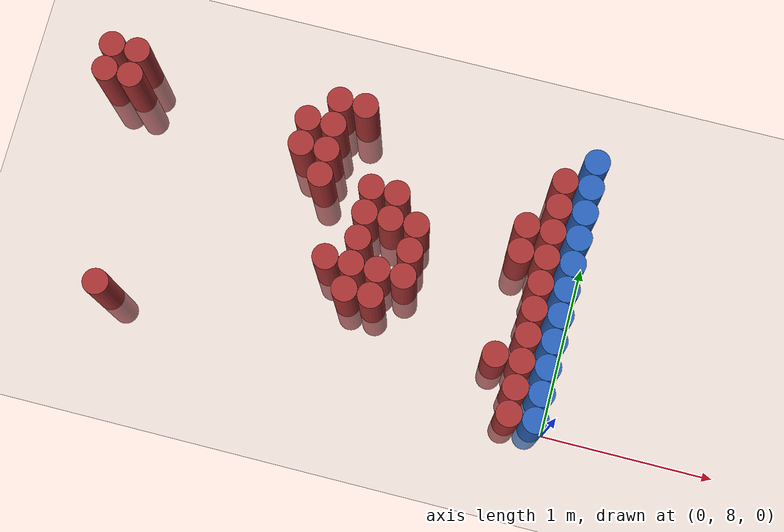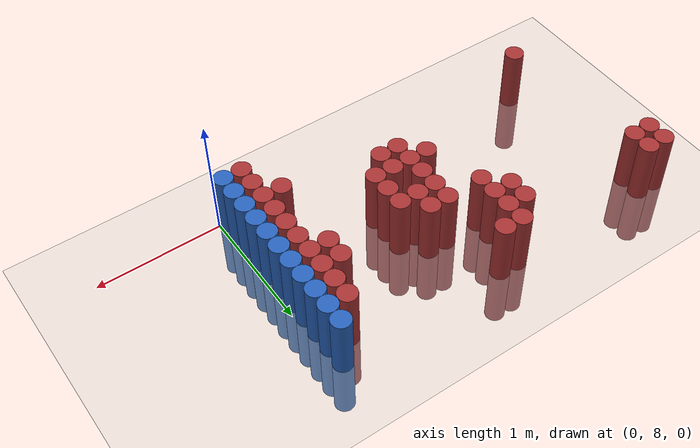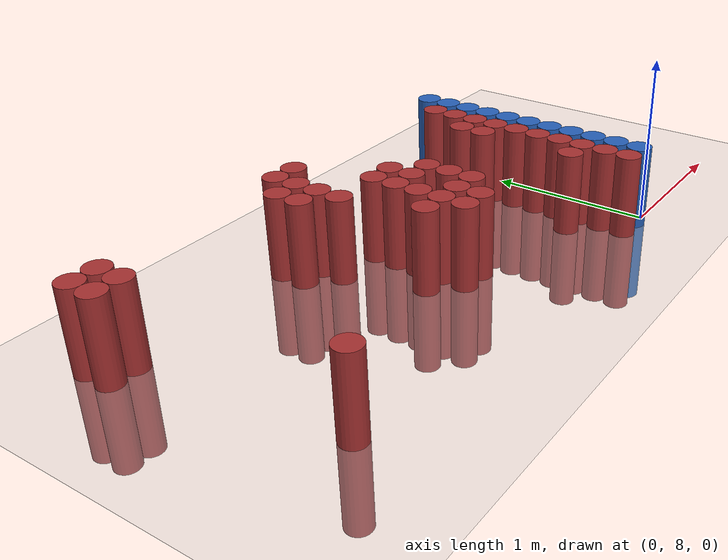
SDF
<sdf version="1.6">
 <world name="default">
  <model name="ground_plane">
   <static>1</static>
   <link name="link">
    <collision name="collision">
     <geometry><plane><normal>0 0 1</normal><size>100 100</size></plane></geometry>
     <surface><friction><ode><mu>100</mu><mu2>50</mu2></ode></friction></surface>
    </collision>
    <visual name="visual">
     <cast_shadows>0</cast_shadows>
     <geometry><plane><normal>0 0 1</normal><size>100 100</size></plane></geometry>
     <material>
      <script><uri>file://media/materials/scripts/gazebo.material</uri><name>Gazebo/Grey</name></script>
     </material>
    </visual>
   </link>
  </model>
  <model name="unit_cylinder_215">
   <static>1</static>
   <pose>-2.925000 9.375000 0.000000 0.000000 0.000000 0.000000</pose>
   <link name="link">
    <inertial>
     <mass>1</mass>
     <inertia><ixx>0.145833</ixx><ixy>0</ixy><ixz>0</ixz><iyy>0.145833</iyy><iyz>0</iyz><izz>0.125</izz></inertia>
    </inertial>
    <collision name="collision">
     <geometry><cylinder><radius>0.075000</radius><length>1</length></cylinder></geometry>
    </collision>
    <visual name="visual">
     <geometry><cylinder><radius>0.075000</radius><length>1</length></cylinder></geometry>
     <material>
      <ambient>0.648000 0.192000 0.192000 1</ambient>
      <diffuse>0.648000 0.192000 0.192000 1</diffuse>
     </material>
     <material>
      <script><name>Gazebo/Grey</name><uri>file://media/materials/scripts/gazebo.material</uri></script>
     </material>
    </visual>
   </link>
  </model>
  <model name="unit_cylinder_216">
   <static>1</static>
   <pose>-2.925000 9.525000 0.000000 0.000000 0.000000 0.000000</pose>
   <link name="link">
    <inertial>
     <mass>1</mass>
     <inertia><ixx>0.145833</ixx><ixy>0</ixy><ixz>0</ixz><iyy>0.145833</iyy><iyz>0</iyz><izz>0.125</izz></inertia>
    </inertial>
    <collision name="collision">
     <geometry><cylinder><radius>0.075000</radius><length>1</length></cylinder></geometry>
    </collision>
    <visual name="visual">
     <geometry><cylinder><radius>0.075000</radius><length>1</length></cylinder></geometry>
     <material>
      <ambient>0.648000 0.192000 0.192000 1</ambient>
      <diffuse>0.648000 0.192000 0.192000 1</diffuse>
     </material>
     <material>
      <script><name>Gazebo/Grey</name><uri>file://media/materials/scripts/gazebo.material</uri></script>
     </material>
    </visual>
   </link>
  </model>
  <model name="unit_cylinder_219">
   <static>1</static>
   <pose>-2.775000 9.375000 0.000000 0.000000 0.000000 0.000000</pose>
   <link name="link">
    <inertial>
     <mass>1</mass>
     <inertia><ixx>0.145833</ixx><ixy>0</ixy><ixz>0</ixz><iyy>0.145833</iyy><iyz>0</iyz><izz>0.125</izz></inertia>
    </inertial>
    <collision name="collision">
     <geometry><cylinder><radius>0.075000</radius><length>1</length></cylinder></geometry>
    </collision>
    <visual name="visual">
     <geometry><cylinder><radius>0.075000</radius><length>1</length></cylinder></geometry>
     <material>
      <ambient>0.648000 0.192000 0.192000 1</ambient>
      <diffuse>0.648000 0.192000 0.192000 1</diffuse>
     </material>
     <material>
      <script><name>Gazebo/Grey</name><uri>file://media/materials/scripts/gazebo.material</uri></script>
     </material>
    </visual>
   </link>
  </model>
  <model name="unit_cylinder_220">
   <static>1</static>
   <pose>-2.775000 9.525000 0.000000 0.000000 0.000000 0.000000</pose>
   <link name="link">
    <inertial>
     <mass>1</mass>
     <inertia><ixx>0.145833</ixx><ixy>0</ixy><ixz>0</ixz><iyy>0.145833</iyy><iyz>0</iyz><izz>0.125</izz></inertia>
    </inertial>
    <collision name="collision">
     <geometry><cylinder><radius>0.075000</radius><length>1</length></cylinder></geometry>
    </collision>
    <visual name="visual">
     <geometry><cylinder><radius>0.075000</radius><length>1</length></cylinder></geometry>
     <material>
      <ambient>0.648000 0.192000 0.192000 1</ambient>
      <diffuse>0.648000 0.192000 0.192000 1</diffuse>
     </material>
     <material>
      <script><name>Gazebo/Grey</name><uri>file://media/materials/scripts/gazebo.material</uri></script>
     </material>
    </visual>
   </link>
  </model>
  <model name="unit_cylinder_222">
   <static>1</static>
   <pose>-2.625000 8.175000 0.000000 0.000000 0.000000 0.000000</pose>
   <link name="link">
    <inertial>
     <mass>1</mass>
     <inertia><ixx>0.145833</ixx><ixy>0</ixy><ixz>0</ixz><iyy>0.145833</iyy><iyz>0</iyz><izz>0.125</izz></inertia>
    </inertial>
    <collision name="collision">
     <geometry><cylinder><radius>0.075000</radius><length>1</length></cylinder></geometry>
    </collision>
    <visual name="visual">
     <geometry><cylinder><radius>0.075000</radius><length>1</length></cylinder></geometry>
     <material>
      <ambient>0.648000 0.192000 0.192000 1</ambient>
      <diffuse>0.648000 0.192000 0.192000 1</diffuse>
     </material>
     <material>
      <script><name>Gazebo/Grey</name><uri>file://media/materials/scripts/gazebo.material</uri></script>
     </material>
    </visual>
   </link>
  </model>
  <model name="unit_cylinder_223">
   <static>1</static>
   <pose>-1.725000 9.225000 0.000000 0.000000 0.000000 0.000000</pose>
   <link name="link">
    <inertial>
     <mass>1</mass>
     <inertia><ixx>0.145833</ixx><ixy>0</ixy><ixz>0</ixz><iyy>0.145833</iyy><iyz>0</iyz><izz>0.125</izz></inertia>
    </inertial>
    <collision name="collision">
     <geometry><cylinder><radius>0.075000</radius><length>1</length></cylinder></geometry>
    </collision>
    <visual name="visual">
     <geometry><cylinder><radius>0.075000</radius><length>1</length></cylinder></geometry>
     <material>
      <ambient>0.648000 0.192000 0.192000 1</ambient>
      <diffuse>0.648000 0.192000 0.192000 1</diffuse>
     </material>
     <material>
      <script><name>Gazebo/Grey</name><uri>file://media/materials/scripts/gazebo.material</uri></script>
     </material>
    </visual>
   </link>
  </model>
  <model name="unit_cylinder_224">
   <static>1</static>
   <pose>-1.725000 9.375000 0.000000 0.000000 0.000000 0.000000</pose>
   <link name="link">
    <inertial>
     <mass>1</mass>
     <inertia><ixx>0.145833</ixx><ixy>0</ixy><ixz>0</ixz><iyy>0.145833</iyy><iyz>0</iyz><izz>0.125</izz></inertia>
    </inertial>
    <collision name="collision">
     <geometry><cylinder><radius>0.075000</radius><length>1</length></cylinder></geometry>
    </collision>
    <visual name="visual">
     <geometry><cylinder><radius>0.075000</radius><length>1</length></cylinder></geometry>
     <material>
      <ambient>0.648000 0.192000 0.192000 1</ambient>
      <diffuse>0.648000 0.192000 0.192000 1</diffuse>
     </material>
     <material>
      <script><name>Gazebo/Grey</name><uri>file://media/materials/scripts/gazebo.material</uri></script>
     </material>
    </visual>
   </link>
  </model>
  <model name="unit_cylinder_225">
   <static>1</static>
   <pose>-1.575000 9.075000 0.000000 0.000000 0.000000 0.000000</pose>
   <link name="link">
    <inertial>
     <mass>1</mass>
     <inertia><ixx>0.145833</ixx><ixy>0</ixy><ixz>0</ixz><iyy>0.145833</iyy><iyz>0</iyz><izz>0.125</izz></inertia>
    </inertial>
    <collision name="collision">
     <geometry><cylinder><radius>0.075000</radius><length>1</length></cylinder></geometry>
    </collision>
    <visual name="visual">
     <geometry><cylinder><radius>0.075000</radius><length>1</length></cylinder></geometry>
     <material>
      <ambient>0.648000 0.192000 0.192000 1</ambient>
      <diffuse>0.648000 0.192000 0.192000 1</diffuse>
     </material>
     <material>
      <script><name>Gazebo/Grey</name><uri>file://media/materials/scripts/gazebo.material</uri></script>
     </material>
    </visual>
   </link>
  </model>
  <model name="unit_cylinder_226">
   <static>1</static>
   <pose>-1.575000 9.225000 0.000000 0.000000 0.000000 0.000000</pose>
   <link name="link">
    <inertial>
     <mass>1</mass>
     <inertia><ixx>0.145833</ixx><ixy>0</ixy><ixz>0</ixz><iyy>0.145833</iyy><iyz>0</iyz><izz>0.125</izz></inertia>
    </inertial>
    <collision name="collision">
     <geometry><cylinder><radius>0.075000</radius><length>1</length></cylinder></geometry>
    </collision>
    <visual name="visual">
     <geometry><cylinder><radius>0.075000</radius><length>1</length></cylinder></geometry>
     <material>
      <ambient>0.648000 0.192000 0.192000 1</ambient>
      <diffuse>0.648000 0.192000 0.192000 1</diffuse>
     </material>
     <material>
      <script><name>Gazebo/Grey</name><uri>file://media/materials/scripts/gazebo.material</uri></script>
     </material>
    </visual>
   </link>
  </model>
  <model name="unit_cylinder_227">
   <static>1</static>
   <pose>-1.575000 9.375000 0.000000 0.000000 0.000000 0.000000</pose>
   <link name="link">
    <inertial>
     <mass>1</mass>
     <inertia><ixx>0.145833</ixx><ixy>0</ixy><ixz>0</ixz><iyy>0.145833</iyy><iyz>0</iyz><izz>0.125</izz></inertia>
    </inertial>
    <collision name="collision">
     <geometry><cylinder><radius>0.075000</radius><length>1</length></cylinder></geometry>
    </collision>
    <visual name="visual">
     <geometry><cylinder><radius>0.075000</radius><length>1</length></cylinder></geometry>
     <material>
      <ambient>0.648000 0.192000 0.192000 1</ambient>
      <diffuse>0.648000 0.192000 0.192000 1</diffuse>
     </material>
     <material>
      <script><name>Gazebo/Grey</name><uri>file://media/materials/scripts/gazebo.material</uri></script>
     </material>
    </visual>
   </link>
  </model>
  <model name="unit_cylinder_228">
   <static>1</static>
   <pose>-1.575000 9.525000 0.000000 0.000000 0.000000 0.000000</pose>
   <link name="link">
    <inertial>
     <mass>1</mass>
     <inertia><ixx>0.145833</ixx><ixy>0</ixy><ixz>0</ixz><iyy>0.145833</iyy><iyz>0</iyz><izz>0.125</izz></inertia>
    </inertial>
    <collision name="collision">
     <geometry><cylinder><radius>0.075000</radius><length>1</length></cylinder></geometry>
    </collision>
    <visual name="visual">
     <geometry><cylinder><radius>0.075000</radius><length>1</length></cylinder></geometry>
     <material>
      <ambient>0.648000 0.192000 0.192000 1</ambient>
      <diffuse>0.648000 0.192000 0.192000 1</diffuse>
     </material>
     <material>
      <script><name>Gazebo/Grey</name><uri>file://media/materials/scripts/gazebo.material</uri></script>
     </material>
    </visual>
   </link>
  </model>
  <model name="unit_cylinder_233">
   <static>1</static>
   <pose>-1.425000 8.625000 0.000000 0.000000 0.000000 0.000000</pose>
   <link name="link">
    <inertial>
     <mass>1</mass>
     <inertia><ixx>0.145833</ixx><ixy>0</ixy><ixz>0</ixz><iyy>0.145833</iyy><iyz>0</iyz><izz>0.125</izz></inertia>
    </inertial>
    <collision name="collision">
     <geometry><cylinder><radius>0.075000</radius><length>1</length></cylinder></geometry>
    </collision>
    <visual name="visual">
     <geometry><cylinder><radius>0.075000</radius><length>1</length></cylinder></geometry>
     <material>
      <ambient>0.648000 0.192000 0.192000 1</ambient>
      <diffuse>0.648000 0.192000 0.192000 1</diffuse>
     </material>
     <material>
      <script><name>Gazebo/Grey</name><uri>file://media/materials/scripts/gazebo.material</uri></script>
     </material>
    </visual>
   </link>
  </model>
  <model name="unit_cylinder_234">
   <static>1</static>
   <pose>-1.425000 9.525000 0.000000 0.000000 0.000000 0.000000</pose>
   <link name="link">
    <inertial>
     <mass>1</mass>
     <inertia><ixx>0.145833</ixx><ixy>0</ixy><ixz>0</ixz><iyy>0.145833</iyy><iyz>0</iyz><izz>0.125</izz></inertia>
    </inertial>
    <collision name="collision">
     <geometry><cylinder><radius>0.075000</radius><length>1</length></cylinder></geometry>
    </collision>
    <visual name="visual">
     <geometry><cylinder><radius>0.075000</radius><length>1</length></cylinder></geometry>
     <material>
      <ambient>0.648000 0.192000 0.192000 1</ambient>
      <diffuse>0.648000 0.192000 0.192000 1</diffuse>
     </material>
     <material>
      <script><name>Gazebo/Grey</name><uri>file://media/materials/scripts/gazebo.material</uri></script>
     </material>
    </visual>
   </link>
  </model>
  <model name="unit_cylinder_240">
   <static>1</static>
   <pose>-1.275000 8.475000 0.000000 0.000000 0.000000 0.000000</pose>
   <link name="link">
    <inertial>
     <mass>1</mass>
     <inertia><ixx>0.145833</ixx><ixy>0</ixy><ixz>0</ixz><iyy>0.145833</iyy><iyz>0</iyz><izz>0.125</izz></inertia>
    </inertial>
    <collision name="collision">
     <geometry><cylinder><radius>0.075000</radius><length>1</length></cylinder></geometry>
    </collision>
    <visual name="visual">
     <geometry><cylinder><radius>0.075000</radius><length>1</length></cylinder></geometry>
     <material>
      <ambient>0.648000 0.192000 0.192000 1</ambient>
      <diffuse>0.648000 0.192000 0.192000 1</diffuse>
     </material>
     <material>
      <script><name>Gazebo/Grey</name><uri>file://media/materials/scripts/gazebo.material</uri></script>
     </material>
    </visual>
   </link>
  </model>
  <model name="unit_cylinder_241">
   <static>1</static>
   <pose>-1.275000 8.625000 0.000000 0.000000 0.000000 0.000000</pose>
   <link name="link">
    <inertial>
     <mass>1</mass>
     <inertia><ixx>0.145833</ixx><ixy>0</ixy><ixz>0</ixz><iyy>0.145833</iyy><iyz>0</iyz><izz>0.125</izz></inertia>
    </inertial>
    <collision name="collision">
     <geometry><cylinder><radius>0.075000</radius><length>1</length></cylinder></geometry>
    </collision>
    <visual name="visual">
     <geometry><cylinder><radius>0.075000</radius><length>1</length></cylinder></geometry>
     <material>
      <ambient>0.648000 0.192000 0.192000 1</ambient>
      <diffuse>0.648000 0.192000 0.192000 1</diffuse>
     </material>
     <material>
      <script><name>Gazebo/Grey</name><uri>file://media/materials/scripts/gazebo.material</uri></script>
     </material>
    </visual>
   </link>
  </model>
  <model name="unit_cylinder_242">
   <static>1</static>
   <pose>-1.275000 8.775000 0.000000 0.000000 0.000000 0.000000</pose>
   <link name="link">
    <inertial>
     <mass>1</mass>
     <inertia><ixx>0.145833</ixx><ixy>0</ixy><ixz>0</ixz><iyy>0.145833</iyy><iyz>0</iyz><izz>0.125</izz></inertia>
    </inertial>
    <collision name="collision">
     <geometry><cylinder><radius>0.075000</radius><length>1</length></cylinder></geometry>
    </collision>
    <visual name="visual">
     <geometry><cylinder><radius>0.075000</radius><length>1</length></cylinder></geometry>
     <material>
      <ambient>0.648000 0.192000 0.192000 1</ambient>
      <diffuse>0.648000 0.192000 0.192000 1</diffuse>
     </material>
     <material>
      <script><name>Gazebo/Grey</name><uri>file://media/materials/scripts/gazebo.material</uri></script>
     </material>
    </visual>
   </link>
  </model>
  <model name="unit_cylinder_243">
   <static>1</static>
   <pose>-1.275000 8.925000 0.000000 0.000000 0.000000 0.000000</pose>
   <link name="link">
    <inertial>
     <mass>1</mass>
     <inertia><ixx>0.145833</ixx><ixy>0</ixy><ixz>0</ixz><iyy>0.145833</iyy><iyz>0</iyz><izz>0.125</izz></inertia>
    </inertial>
    <collision name="collision">
     <geometry><cylinder><radius>0.075000</radius><length>1</length></cylinder></geometry>
    </collision>
    <visual name="visual">
     <geometry><cylinder><radius>0.075000</radius><length>1</length></cylinder></geometry>
     <material>
      <ambient>0.648000 0.192000 0.192000 1</ambient>
      <diffuse>0.648000 0.192000 0.192000 1</diffuse>
     </material>
     <material>
      <script><name>Gazebo/Grey</name><uri>file://media/materials/scripts/gazebo.material</uri></script>
     </material>
    </visual>
   </link>
  </model>
  <model name="unit_cylinder_244">
   <static>1</static>
   <pose>-1.275000 9.075000 0.000000 0.000000 0.000000 0.000000</pose>
   <link name="link">
    <inertial>
     <mass>1</mass>
     <inertia><ixx>0.145833</ixx><ixy>0</ixy><ixz>0</ixz><iyy>0.145833</iyy><iyz>0</iyz><izz>0.125</izz></inertia>
    </inertial>
    <collision name="collision">
     <geometry><cylinder><radius>0.075000</radius><length>1</length></cylinder></geometry>
    </collision>
    <visual name="visual">
     <geometry><cylinder><radius>0.075000</radius><length>1</length></cylinder></geometry>
     <material>
      <ambient>0.648000 0.192000 0.192000 1</ambient>
      <diffuse>0.648000 0.192000 0.192000 1</diffuse>
     </material>
     <material>
      <script><name>Gazebo/Grey</name><uri>file://media/materials/scripts/gazebo.material</uri></script>
     </material>
    </visual>
   </link>
  </model>
  <model name="unit_cylinder_249">
   <static>1</static>
   <pose>-1.125000 8.475000 0.000000 0.000000 0.000000 0.000000</pose>
   <link name="link">
    <inertial>
     <mass>1</mass>
     <inertia><ixx>0.145833</ixx><ixy>0</ixy><ixz>0</ixz><iyy>0.145833</iyy><iyz>0</iyz><izz>0.125</izz></inertia>
    </inertial>
    <collision name="collision">
     <geometry><cylinder><radius>0.075000</radius><length>1</length></cylinder></geometry>
    </collision>
    <visual name="visual">
     <geometry><cylinder><radius>0.075000</radius><length>1</length></cylinder></geometry>
     <material>
      <ambient>0.648000 0.192000 0.192000 1</ambient>
      <diffuse>0.648000 0.192000 0.192000 1</diffuse>
     </material>
     <material>
      <script><name>Gazebo/Grey</name><uri>file://media/materials/scripts/gazebo.material</uri></script>
     </material>
    </visual>
   </link>
  </model>
  <model name="unit_cylinder_250">
   <static>1</static>
   <pose>-1.125000 8.625000 0.000000 0.000000 0.000000 0.000000</pose>
   <link name="link">
    <inertial>
     <mass>1</mass>
     <inertia><ixx>0.145833</ixx><ixy>0</ixy><ixz>0</ixz><iyy>0.145833</iyy><iyz>0</iyz><izz>0.125</izz></inertia>
    </inertial>
    <collision name="collision">
     <geometry><cylinder><radius>0.075000</radius><length>1</length></cylinder></geometry>
    </collision>
    <visual name="visual">
     <geometry><cylinder><radius>0.075000</radius><length>1</length></cylinder></geometry>
     <material>
      <ambient>0.648000 0.192000 0.192000 1</ambient>
      <diffuse>0.648000 0.192000 0.192000 1</diffuse>
     </material>
     <material>
      <script><name>Gazebo/Grey</name><uri>file://media/materials/scripts/gazebo.material</uri></script>
     </material>
    </visual>
   </link>
  </model>
  <model name="unit_cylinder_251">
   <static>1</static>
   <pose>-1.125000 8.925000 0.000000 0.000000 0.000000 0.000000</pose>
   <link name="link">
    <inertial>
     <mass>1</mass>
     <inertia><ixx>0.145833</ixx><ixy>0</ixy><ixz>0</ixz><iyy>0.145833</iyy><iyz>0</iyz><izz>0.125</izz></inertia>
    </inertial>
    <collision name="collision">
     <geometry><cylinder><radius>0.075000</radius><length>1</length></cylinder></geometry>
    </collision>
    <visual name="visual">
     <geometry><cylinder><radius>0.075000</radius><length>1</length></cylinder></geometry>
     <material>
      <ambient>0.648000 0.192000 0.192000 1</ambient>
      <diffuse>0.648000 0.192000 0.192000 1</diffuse>
     </material>
     <material>
      <script><name>Gazebo/Grey</name><uri>file://media/materials/scripts/gazebo.material</uri></script>
     </material>
    </visual>
   </link>
  </model>
  <model name="unit_cylinder_252">
   <static>1</static>
   <pose>-1.125000 9.075000 0.000000 0.000000 0.000000 0.000000</pose>
   <link name="link">
    <inertial>
     <mass>1</mass>
     <inertia><ixx>0.145833</ixx><ixy>0</ixy><ixz>0</ixz><iyy>0.145833</iyy><iyz>0</iyz><izz>0.125</izz></inertia>
    </inertial>
    <collision name="collision">
     <geometry><cylinder><radius>0.075000</radius><length>1</length></cylinder></geometry>
    </collision>
    <visual name="visual">
     <geometry><cylinder><radius>0.075000</radius><length>1</length></cylinder></geometry>
     <material>
      <ambient>0.648000 0.192000 0.192000 1</ambient>
      <diffuse>0.648000 0.192000 0.192000 1</diffuse>
     </material>
     <material>
      <script><name>Gazebo/Grey</name><uri>file://media/materials/scripts/gazebo.material</uri></script>
     </material>
    </visual>
   </link>
  </model>
  <model name="unit_cylinder_254">
   <static>1</static>
   <pose>-0.975000 8.625000 0.000000 0.000000 0.000000 0.000000</pose>
   <link name="link">
    <inertial>
     <mass>1</mass>
     <inertia><ixx>0.145833</ixx><ixy>0</ixy><ixz>0</ixz><iyy>0.145833</iyy><iyz>0</iyz><izz>0.125</izz></inertia>
    </inertial>
    <collision name="collision">
     <geometry><cylinder><radius>0.075000</radius><length>1</length></cylinder></geometry>
    </collision>
    <visual name="visual">
     <geometry><cylinder><radius>0.075000</radius><length>1</length></cylinder></geometry>
     <material>
      <ambient>0.648000 0.192000 0.192000 1</ambient>
      <diffuse>0.648000 0.192000 0.192000 1</diffuse>
     </material>
     <material>
      <script><name>Gazebo/Grey</name><uri>file://media/materials/scripts/gazebo.material</uri></script>
     </material>
    </visual>
   </link>
  </model>
  <model name="unit_cylinder_255">
   <static>1</static>
   <pose>-0.975000 8.775000 0.000000 0.000000 0.000000 0.000000</pose>
   <link name="link">
    <inertial>
     <mass>1</mass>
     <inertia><ixx>0.145833</ixx><ixy>0</ixy><ixz>0</ixz><iyy>0.145833</iyy><iyz>0</iyz><izz>0.125</izz></inertia>
    </inertial>
    <collision name="collision">
     <geometry><cylinder><radius>0.075000</radius><length>1</length></cylinder></geometry>
    </collision>
    <visual name="visual">
     <geometry><cylinder><radius>0.075000</radius><length>1</length></cylinder></geometry>
     <material>
      <ambient>0.648000 0.192000 0.192000 1</ambient>
      <diffuse>0.648000 0.192000 0.192000 1</diffuse>
     </material>
     <material>
      <script><name>Gazebo/Grey</name><uri>file://media/materials/scripts/gazebo.material</uri></script>
     </material>
    </visual>
   </link>
  </model>
  <model name="unit_cylinder_256">
   <static>1</static>
   <pose>-0.975000 8.925000 0.000000 0.000000 0.000000 0.000000</pose>
   <link name="link">
    <inertial>
     <mass>1</mass>
     <inertia><ixx>0.145833</ixx><ixy>0</ixy><ixz>0</ixz><iyy>0.145833</iyy><iyz>0</iyz><izz>0.125</izz></inertia>
    </inertial>
    <collision name="collision">
     <geometry><cylinder><radius>0.075000</radius><length>1</length></cylinder></geometry>
    </collision>
    <visual name="visual">
     <geometry><cylinder><radius>0.075000</radius><length>1</length></cylinder></geometry>
     <material>
      <ambient>0.648000 0.192000 0.192000 1</ambient>
      <diffuse>0.648000 0.192000 0.192000 1</diffuse>
     </material>
     <material>
      <script><name>Gazebo/Grey</name><uri>file://media/materials/scripts/gazebo.material</uri></script>
     </material>
    </visual>
   </link>
  </model>
  <model name="unit_cylinder_292">
   <static>1</static>
   <pose>-0.375000 8.325000 0.000000 0.000000 0.000000 0.000000</pose>
   <link name="link">
    <inertial>
     <mass>1</mass>
     <inertia><ixx>0.145833</ixx><ixy>0</ixy><ixz>0</ixz><iyy>0.145833</iyy><iyz>0</iyz><izz>0.125</izz></inertia>
    </inertial>
    <collision name="collision">
     <geometry><cylinder><radius>0.075000</radius><length>1</length></cylinder></geometry>
    </collision>
    <visual name="visual">
     <geometry><cylinder><radius>0.075000</radius><length>1</length></cylinder></geometry>
     <material>
      <ambient>0.648000 0.192000 0.192000 1</ambient>
      <diffuse>0.648000 0.192000 0.192000 1</diffuse>
     </material>
     <material>
      <script><name>Gazebo/Grey</name><uri>file://media/materials/scripts/gazebo.material</uri></script>
     </material>
    </visual>
   </link>
  </model>
  <model name="unit_cylinder_293">
   <static>1</static>
   <pose>-0.375000 8.925000 0.000000 0.000000 0.000000 0.000000</pose>
   <link name="link">
    <inertial>
     <mass>1</mass>
     <inertia><ixx>0.145833</ixx><ixy>0</ixy><ixz>0</ixz><iyy>0.145833</iyy><iyz>0</iyz><izz>0.125</izz></inertia>
    </inertial>
    <collision name="collision">
     <geometry><cylinder><radius>0.075000</radius><length>1</length></cylinder></geometry>
    </collision>
    <visual name="visual">
     <geometry><cylinder><radius>0.075000</radius><length>1</length></cylinder></geometry>
     <material>
      <ambient>0.648000 0.192000 0.192000 1</ambient>
      <diffuse>0.648000 0.192000 0.192000 1</diffuse>
     </material>
     <material>
      <script><name>Gazebo/Grey</name><uri>file://media/materials/scripts/gazebo.material</uri></script>
     </material>
    </visual>
   </link>
  </model>
  <model name="unit_cylinder_294">
   <static>1</static>
   <pose>-0.375000 9.075000 0.000000 0.000000 0.000000 0.000000</pose>
   <link name="link">
    <inertial>
     <mass>1</mass>
     <inertia><ixx>0.145833</ixx><ixy>0</ixy><ixz>0</ixz><iyy>0.145833</iyy><iyz>0</iyz><izz>0.125</izz></inertia>
    </inertial>
    <collision name="collision">
     <geometry><cylinder><radius>0.075000</radius><length>1</length></cylinder></geometry>
    </collision>
    <visual name="visual">
     <geometry><cylinder><radius>0.075000</radius><length>1</length></cylinder></geometry>
     <material>
      <ambient>0.648000 0.192000 0.192000 1</ambient>
      <diffuse>0.648000 0.192000 0.192000 1</diffuse>
     </material>
     <material>
      <script><name>Gazebo/Grey</name><uri>file://media/materials/scripts/gazebo.material</uri></script>
     </material>
    </visual>
   </link>
  </model>
  <model name="unit_cylinder_298">
   <static>1</static>
   <pose>-0.225000 8.025000 0.000000 0.000000 0.000000 0.000000</pose>
   <link name="link">
    <inertial>
     <mass>1</mass>
     <inertia><ixx>0.145833</ixx><ixy>0</ixy><ixz>0</ixz><iyy>0.145833</iyy><iyz>0</iyz><izz>0.125</izz></inertia>
    </inertial>
    <collision name="collision">
     <geometry><cylinder><radius>0.075000</radius><length>1</length></cylinder></geometry>
    </collision>
    <visual name="visual">
     <geometry><cylinder><radius>0.075000</radius><length>1</length></cylinder></geometry>
     <material>
      <ambient>0.648000 0.192000 0.192000 1</ambient>
      <diffuse>0.648000 0.192000 0.192000 1</diffuse>
     </material>
     <material>
      <script><name>Gazebo/Grey</name><uri>file://media/materials/scripts/gazebo.material</uri></script>
     </material>
    </visual>
   </link>
  </model>
  <model name="unit_cylinder_299">
   <static>1</static>
   <pose>-0.225000 8.175000 0.000000 0.000000 0.000000 0.000000</pose>
   <link name="link">
    <inertial>
     <mass>1</mass>
     <inertia><ixx>0.145833</ixx><ixy>0</ixy><ixz>0</ixz><iyy>0.145833</iyy><iyz>0</iyz><izz>0.125</izz></inertia>
    </inertial>
    <collision name="collision">
     <geometry><cylinder><radius>0.075000</radius><length>1</length></cylinder></geometry>
    </collision>
    <visual name="visual">
     <geometry><cylinder><radius>0.075000</radius><length>1</length></cylinder></geometry>
     <material>
      <ambient>0.648000 0.192000 0.192000 1</ambient>
      <diffuse>0.648000 0.192000 0.192000 1</diffuse>
     </material>
     <material>
      <script><name>Gazebo/Grey</name><uri>file://media/materials/scripts/gazebo.material</uri></script>
     </material>
    </visual>
   </link>
  </model>
  <model name="unit_cylinder_300">
   <static>1</static>
   <pose>-0.225000 8.325000 0.000000 0.000000 0.000000 0.000000</pose>
   <link name="link">
    <inertial>
     <mass>1</mass>
     <inertia><ixx>0.145833</ixx><ixy>0</ixy><ixz>0</ixz><iyy>0.145833</iyy><iyz>0</iyz><izz>0.125</izz></inertia>
    </inertial>
    <collision name="collision">
     <geometry><cylinder><radius>0.075000</radius><length>1</length></cylinder></geometry>
    </collision>
    <visual name="visual">
     <geometry><cylinder><radius>0.075000</radius><length>1</length></cylinder></geometry>
     <material>
      <ambient>0.648000 0.192000 0.192000 1</ambient>
      <diffuse>0.648000 0.192000 0.192000 1</diffuse>
     </material>
     <material>
      <script><name>Gazebo/Grey</name><uri>file://media/materials/scripts/gazebo.material</uri></script>
     </material>
    </visual>
   </link>
  </model>
  <model name="unit_cylinder_301">
   <static>1</static>
   <pose>-0.225000 8.475000 0.000000 0.000000 0.000000 0.000000</pose>
   <link name="link">
    <inertial>
     <mass>1</mass>
     <inertia><ixx>0.145833</ixx><ixy>0</ixy><ixz>0</ixz><iyy>0.145833</iyy><iyz>0</iyz><izz>0.125</izz></inertia>
    </inertial>
    <collision name="collision">
     <geometry><cylinder><radius>0.075000</radius><length>1</length></cylinder></geometry>
    </collision>
    <visual name="visual">
     <geometry><cylinder><radius>0.075000</radius><length>1</length></cylinder></geometry>
     <material>
      <ambient>0.648000 0.192000 0.192000 1</ambient>
      <diffuse>0.648000 0.192000 0.192000 1</diffuse>
     </material>
     <material>
      <script><name>Gazebo/Grey</name><uri>file://media/materials/scripts/gazebo.material</uri></script>
     </material>
    </visual>
   </link>
  </model>
  <model name="unit_cylinder_302">
   <static>1</static>
   <pose>-0.225000 8.625000 0.000000 0.000000 0.000000 0.000000</pose>
   <link name="link">
    <inertial>
     <mass>1</mass>
     <inertia><ixx>0.145833</ixx><ixy>0</ixy><ixz>0</ixz><iyy>0.145833</iyy><iyz>0</iyz><izz>0.125</izz></inertia>
    </inertial>
    <collision name="collision">
     <geometry><cylinder><radius>0.075000</radius><length>1</length></cylinder></geometry>
    </collision>
    <visual name="visual">
     <geometry><cylinder><radius>0.075000</radius><length>1</length></cylinder></geometry>
     <material>
      <ambient>0.648000 0.192000 0.192000 1</ambient>
      <diffuse>0.648000 0.192000 0.192000 1</diffuse>
     </material>
     <material>
      <script><name>Gazebo/Grey</name><uri>file://media/materials/scripts/gazebo.material</uri></script>
     </material>
    </visual>
   </link>
  </model>
  <model name="unit_cylinder_303">
   <static>1</static>
   <pose>-0.225000 8.775000 0.000000 0.000000 0.000000 0.000000</pose>
   <link name="link">
    <inertial>
     <mass>1</mass>
     <inertia><ixx>0.145833</ixx><ixy>0</ixy><ixz>0</ixz><iyy>0.145833</iyy><iyz>0</iyz><izz>0.125</izz></inertia>
    </inertial>
    <collision name="collision">
     <geometry><cylinder><radius>0.075000</radius><length>1</length></cylinder></geometry>
    </collision>
    <visual name="visual">
     <geometry><cylinder><radius>0.075000</radius><length>1</length></cylinder></geometry>
     <material>
      <ambient>0.648000 0.192000 0.192000 1</ambient>
      <diffuse>0.648000 0.192000 0.192000 1</diffuse>
     </material>
     <material>
      <script><name>Gazebo/Grey</name><uri>file://media/materials/scripts/gazebo.material</uri></script>
     </material>
    </visual>
   </link>
  </model>
  <model name="unit_cylinder_304">
   <static>1</static>
   <pose>-0.225000 8.925000 0.000000 0.000000 0.000000 0.000000</pose>
   <link name="link">
    <inertial>
     <mass>1</mass>
     <inertia><ixx>0.145833</ixx><ixy>0</ixy><ixz>0</ixz><iyy>0.145833</iyy><iyz>0</iyz><izz>0.125</izz></inertia>
    </inertial>
    <collision name="collision">
     <geometry><cylinder><radius>0.075000</radius><length>1</length></cylinder></geometry>
    </collision>
    <visual name="visual">
     <geometry><cylinder><radius>0.075000</radius><length>1</length></cylinder></geometry>
     <material>
      <ambient>0.648000 0.192000 0.192000 1</ambient>
      <diffuse>0.648000 0.192000 0.192000 1</diffuse>
     </material>
     <material>
      <script><name>Gazebo/Grey</name><uri>file://media/materials/scripts/gazebo.material</uri></script>
     </material>
    </visual>
   </link>
  </model>
  <model name="unit_cylinder_305">
   <static>1</static>
   <pose>-0.225000 9.075000 0.000000 0.000000 0.000000 0.000000</pose>
   <link name="link">
    <inertial>
     <mass>1</mass>
     <inertia><ixx>0.145833</ixx><ixy>0</ixy><ixz>0</ixz><iyy>0.145833</iyy><iyz>0</iyz><izz>0.125</izz></inertia>
    </inertial>
    <collision name="collision">
     <geometry><cylinder><radius>0.075000</radius><length>1</length></cylinder></geometry>
    </collision>
    <visual name="visual">
     <geometry><cylinder><radius>0.075000</radius><length>1</length></cylinder></geometry>
     <material>
      <ambient>0.648000 0.192000 0.192000 1</ambient>
      <diffuse>0.648000 0.192000 0.192000 1</diffuse>
     </material>
     <material>
      <script><name>Gazebo/Grey</name><uri>file://media/materials/scripts/gazebo.material</uri></script>
     </material>
    </visual>
   </link>
  </model>
  <model name="unit_cylinder_306">
   <static>1</static>
   <pose>-0.225000 9.225000 0.000000 0.000000 0.000000 0.000000</pose>
   <link name="link">
    <inertial>
     <mass>1</mass>
     <inertia><ixx>0.145833</ixx><ixy>0</ixy><ixz>0</ixz><iyy>0.145833</iyy><iyz>0</iyz><izz>0.125</izz></inertia>
    </inertial>
    <collision name="collision">
     <geometry><cylinder><radius>0.075000</radius><length>1</length></cylinder></geometry>
    </collision>
    <visual name="visual">
     <geometry><cylinder><radius>0.075000</radius><length>1</length></cylinder></geometry>
     <material>
      <ambient>0.648000 0.192000 0.192000 1</ambient>
      <diffuse>0.648000 0.192000 0.192000 1</diffuse>
     </material>
     <material>
      <script><name>Gazebo/Grey</name><uri>file://media/materials/scripts/gazebo.material</uri></script>
     </material>
    </visual>
   </link>
  </model>
  <model name="unit_cylinder_307">
   <static>1</static>
   <pose>-0.225000 9.375000 0.000000 0.000000 0.000000 0.000000</pose>
   <link name="link">
    <inertial>
     <mass>1</mass>
     <inertia><ixx>0.145833</ixx><ixy>0</ixy><ixz>0</ixz><iyy>0.145833</iyy><iyz>0</iyz><izz>0.125</izz></inertia>
    </inertial>
    <collision name="collision">
     <geometry><cylinder><radius>0.075000</radius><length>1</length></cylinder></geometry>
    </collision>
    <visual name="visual">
     <geometry><cylinder><radius>0.075000</radius><length>1</length></cylinder></geometry>
     <material>
      <ambient>0.648000 0.192000 0.192000 1</ambient>
      <diffuse>0.648000 0.192000 0.192000 1</diffuse>
     </material>
     <material>
      <script><name>Gazebo/Grey</name><uri>file://media/materials/scripts/gazebo.material</uri></script>
     </material>
    </visual>
   </link>
  </model>
  <model name="unit_cylinder_327">
   <static>1</static>
   <pose>-0.075000 8.025000 0.000000 0.000000 0.000000 0.000000</pose>
   <link name="link">
    <inertial>
     <mass>1</mass>
     <inertia><ixx>0.145833</ixx><ixy>0</ixy><ixz>0</ixz><iyy>0.145833</iyy><iyz>0</iyz><izz>0.125</izz></inertia>
    </inertial>
    <collision name="collision">
     <geometry><cylinder><radius>0.075000</radius><length>1</length></cylinder></geometry>
    </collision>
    <visual name="visual">
     <geometry><cylinder><radius>0.075000</radius><length>1</length></cylinder></geometry>
     <material>
      <ambient>0.152000 0.379000 0.720000 1</ambient>
      <diffuse>0.152000 0.379000 0.720000 1</diffuse>
     </material>
     <material>
      <script><name>Gazebo/Grey</name><uri>file://media/materials/scripts/gazebo.material</uri></script>
     </material>
    </visual>
   </link>
  </model>
  <model name="unit_cylinder_328">
   <static>1</static>
   <pose>-0.075000 8.175000 0.000000 0.000000 0.000000 0.000000</pose>
   <link name="link">
    <inertial>
     <mass>1</mass>
     <inertia><ixx>0.145833</ixx><ixy>0</ixy><ixz>0</ixz><iyy>0.145833</iyy><iyz>0</iyz><izz>0.125</izz></inertia>
    </inertial>
    <collision name="collision">
     <geometry><cylinder><radius>0.075000</radius><length>1</length></cylinder></geometry>
    </collision>
    <visual name="visual">
     <geometry><cylinder><radius>0.075000</radius><length>1</length></cylinder></geometry>
     <material>
      <ambient>0.152000 0.379000 0.720000 1</ambient>
      <diffuse>0.152000 0.379000 0.720000 1</diffuse>
     </material>
     <material>
      <script><name>Gazebo/Grey</name><uri>file://media/materials/scripts/gazebo.material</uri></script>
     </material>
    </visual>
   </link>
  </model>
  <model name="unit_cylinder_329">
   <static>1</static>
   <pose>-0.075000 8.325000 0.000000 0.000000 0.000000 0.000000</pose>
   <link name="link">
    <inertial>
     <mass>1</mass>
     <inertia><ixx>0.145833</ixx><ixy>0</ixy><ixz>0</ixz><iyy>0.145833</iyy><iyz>0</iyz><izz>0.125</izz></inertia>
    </inertial>
    <collision name="collision">
     <geometry><cylinder><radius>0.075000</radius><length>1</length></cylinder></geometry>
    </collision>
    <visual name="visual">
     <geometry><cylinder><radius>0.075000</radius><length>1</length></cylinder></geometry>
     <material>
      <ambient>0.152000 0.379000 0.720000 1</ambient>
      <diffuse>0.152000 0.379000 0.720000 1</diffuse>
     </material>
     <material>
      <script><name>Gazebo/Grey</name><uri>file://media/materials/scripts/gazebo.material</uri></script>
     </material>
    </visual>
   </link>
  </model>
  <model name="unit_cylinder_330">
   <static>1</static>
   <pose>-0.075000 8.475000 0.000000 0.000000 0.000000 0.000000</pose>
   <link name="link">
    <inertial>
     <mass>1</mass>
     <inertia><ixx>0.145833</ixx><ixy>0</ixy><ixz>0</ixz><iyy>0.145833</iyy><iyz>0</iyz><izz>0.125</izz></inertia>
    </inertial>
    <collision name="collision">
     <geometry><cylinder><radius>0.075000</radius><length>1</length></cylinder></geometry>
    </collision>
    <visual name="visual">
     <geometry><cylinder><radius>0.075000</radius><length>1</length></cylinder></geometry>
     <material>
      <ambient>0.152000 0.379000 0.720000 1</ambient>
      <diffuse>0.152000 0.379000 0.720000 1</diffuse>
     </material>
     <material>
      <script><name>Gazebo/Grey</name><uri>file://media/materials/scripts/gazebo.material</uri></script>
     </material>
    </visual>
   </link>
  </model>
  <model name="unit_cylinder_331">
   <static>1</static>
   <pose>-0.075000 8.625000 0.000000 0.000000 0.000000 0.000000</pose>
   <link name="link">
    <inertial>
     <mass>1</mass>
     <inertia><ixx>0.145833</ixx><ixy>0</ixy><ixz>0</ixz><iyy>0.145833</iyy><iyz>0</iyz><izz>0.125</izz></inertia>
    </inertial>
    <collision name="collision">
     <geometry><cylinder><radius>0.075000</radius><length>1</length></cylinder></geometry>
    </collision>
    <visual name="visual">
     <geometry><cylinder><radius>0.075000</radius><length>1</length></cylinder></geometry>
     <material>
      <ambient>0.152000 0.379000 0.720000 1</ambient>
      <diffuse>0.152000 0.379000 0.720000 1</diffuse>
     </material>
     <material>
      <script><name>Gazebo/Grey</name><uri>file://media/materials/scripts/gazebo.material</uri></script>
     </material>
    </visual>
   </link>
  </model>
  <model name="unit_cylinder_332">
   <static>1</static>
   <pose>-0.075000 8.775000 0.000000 0.000000 0.000000 0.000000</pose>
   <link name="link">
    <inertial>
     <mass>1</mass>
     <inertia><ixx>0.145833</ixx><ixy>0</ixy><ixz>0</ixz><iyy>0.145833</iyy><iyz>0</iyz><izz>0.125</izz></inertia>
    </inertial>
    <collision name="collision">
     <geometry><cylinder><radius>0.075000</radius><length>1</length></cylinder></geometry>
    </collision>
    <visual name="visual">
     <geometry><cylinder><radius>0.075000</radius><length>1</length></cylinder></geometry>
     <material>
      <ambient>0.152000 0.379000 0.720000 1</ambient>
      <diffuse>0.152000 0.379000 0.720000 1</diffuse>
     </material>
     <material>
      <script><name>Gazebo/Grey</name><uri>file://media/materials/scripts/gazebo.material</uri></script>
     </material>
    </visual>
   </link>
  </model>
  <model name="unit_cylinder_333">
   <static>1</static>
   <pose>-0.075000 8.925000 0.000000 0.000000 0.000000 0.000000</pose>
   <link name="link">
    <inertial>
     <mass>1</mass>
     <inertia><ixx>0.145833</ixx><ixy>0</ixy><ixz>0</ixz><iyy>0.145833</iyy><iyz>0</iyz><izz>0.125</izz></inertia>
    </inertial>
    <collision name="collision">
     <geometry><cylinder><radius>0.075000</radius><length>1</length></cylinder></geometry>
    </collision>
    <visual name="visual">
     <geometry><cylinder><radius>0.075000</radius><length>1</length></cylinder></geometry>
     <material>
      <ambient>0.152000 0.379000 0.720000 1</ambient>
      <diffuse>0.152000 0.379000 0.720000 1</diffuse>
     </material>
     <material>
      <script><name>Gazebo/Grey</name><uri>file://media/materials/scripts/gazebo.material</uri></script>
     </material>
    </visual>
   </link>
  </model>
  <model name="unit_cylinder_334">
   <static>1</static>
   <pose>-0.075000 9.075000 0.000000 0.000000 0.000000 0.000000</pose>
   <link name="link">
    <inertial>
     <mass>1</mass>
     <inertia><ixx>0.145833</ixx><ixy>0</ixy><ixz>0</ixz><iyy>0.145833</iyy><iyz>0</iyz><izz>0.125</izz></inertia>
    </inertial>
    <collision name="collision">
     <geometry><cylinder><radius>0.075000</radius><length>1</length></cylinder></geometry>
    </collision>
    <visual name="visual">
     <geometry><cylinder><radius>0.075000</radius><length>1</length></cylinder></geometry>
     <material>
      <ambient>0.152000 0.379000 0.720000 1</ambient>
      <diffuse>0.152000 0.379000 0.720000 1</diffuse>
     </material>
     <material>
      <script><name>Gazebo/Grey</name><uri>file://media/materials/scripts/gazebo.material</uri></script>
     </material>
    </visual>
   </link>
  </model>
  <model name="unit_cylinder_335">
   <static>1</static>
   <pose>-0.075000 9.225000 0.000000 0.000000 0.000000 0.000000</pose>
   <link name="link">
    <inertial>
     <mass>1</mass>
     <inertia><ixx>0.145833</ixx><ixy>0</ixy><ixz>0</ixz><iyy>0.145833</iyy><iyz>0</iyz><izz>0.125</izz></inertia>
    </inertial>
    <collision name="collision">
     <geometry><cylinder><radius>0.075000</radius><length>1</length></cylinder></geometry>
    </collision>
    <visual name="visual">
     <geometry><cylinder><radius>0.075000</radius><length>1</length></cylinder></geometry>
     <material>
      <ambient>0.152000 0.379000 0.720000 1</ambient>
      <diffuse>0.152000 0.379000 0.720000 1</diffuse>
     </material>
     <material>
      <script><name>Gazebo/Grey</name><uri>file://media/materials/scripts/gazebo.material</uri></script>
     </material>
    </visual>
   </link>
  </model>
  <model name="unit_cylinder_336">
   <static>1</static>
   <pose>-0.075000 9.375000 0.000000 0.000000 0.000000 0.000000</pose>
   <link name="link">
    <inertial>
     <mass>1</mass>
     <inertia><ixx>0.145833</ixx><ixy>0</ixy><ixz>0</ixz><iyy>0.145833</iyy><iyz>0</iyz><izz>0.125</izz></inertia>
    </inertial>
    <collision name="collision">
     <geometry><cylinder><radius>0.075000</radius><length>1</length></cylinder></geometry>
    </collision>
    <visual name="visual">
     <geometry><cylinder><radius>0.075000</radius><length>1</length></cylinder></geometry>
     <material>
      <ambient>0.152000 0.379000 0.720000 1</ambient>
      <diffuse>0.152000 0.379000 0.720000 1</diffuse>
     </material>
     <material>
      <script><name>Gazebo/Grey</name><uri>file://media/materials/scripts/gazebo.material</uri></script>
     </material>
    </visual>
   </link>
  </model>
  <model name="unit_cylinder_337">
   <static>1</static>
   <pose>-0.075000 9.525000 0.000000 0.000000 0.000000 0.000000</pose>
   <link name="link">
    <inertial>
     <mass>1</mass>
     <inertia><ixx>0.145833</ixx><ixy>0</ixy><ixz>0</ixz><iyy>0.145833</iyy><iyz>0</iyz><izz>0.125</izz></inertia>
    </inertial>
    <collision name="collision">
     <geometry><cylinder><radius>0.075000</radius><length>1</length></cylinder></geometry>
    </collision>
    <visual name="visual">
     <geometry><cylinder><radius>0.075000</radius><length>1</length></cylinder></geometry>
     <material>
      <ambient>0.152000 0.379000 0.720000 1</ambient>
      <diffuse>0.152000 0.379000 0.720000 1</diffuse>
     </material>
     <material>
      <script><name>Gazebo/Grey</name><uri>file://media/materials/scripts/gazebo.material</uri></script>
     </material>
    </visual>
   </link>
  </model>
 </world>
</sdf>
